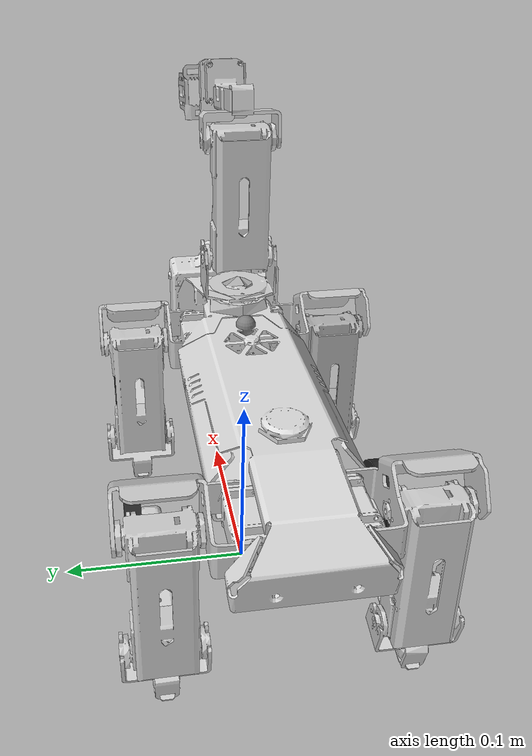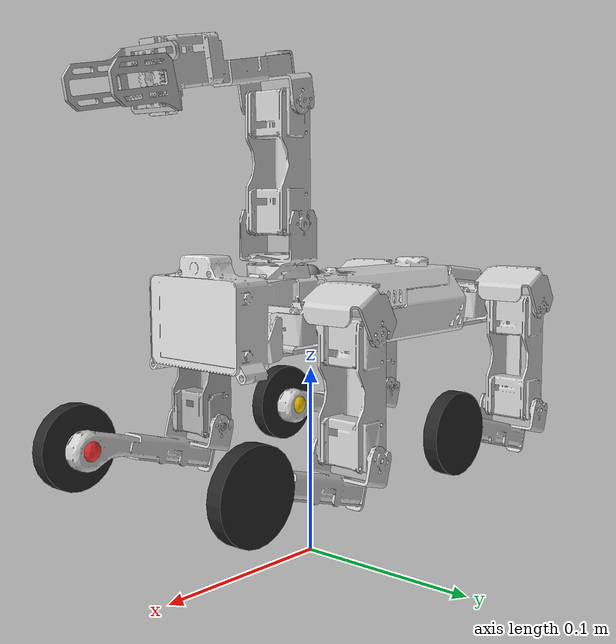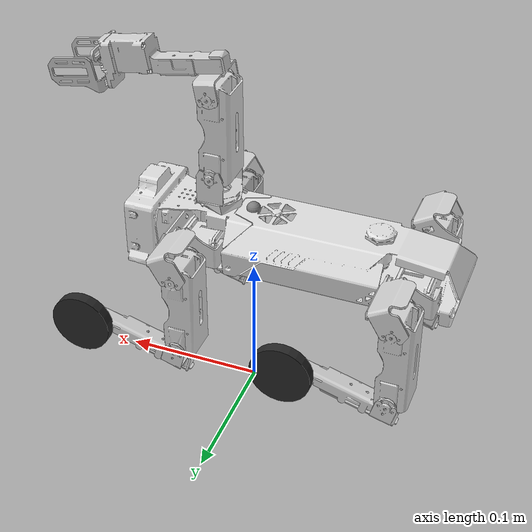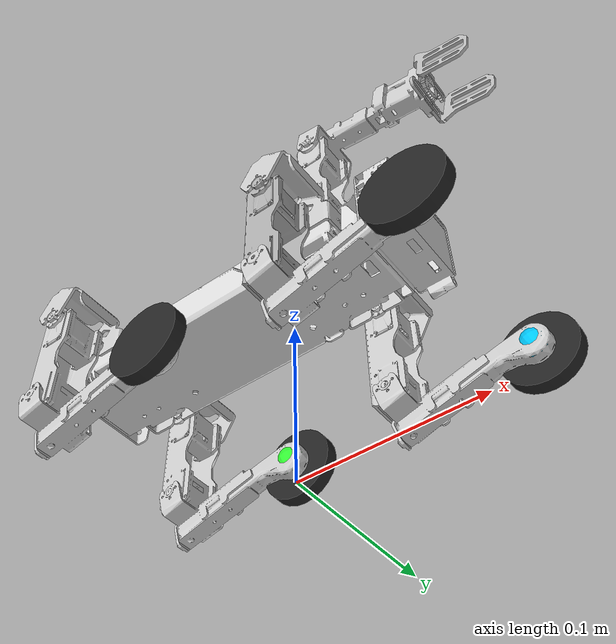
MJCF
<mujoco model="mini2sw">
  <compiler angle="radian" meshdir="../meshes/stl/" autolimits="true" />
  <option timestep="0.001"/>
  <asset>
    <mesh name="base" file="fillet_3_006.stl" content_type="model/stl" />
    <mesh name="fl_hip" file="convert_1_003.stl" content_type="model/stl" />
    <mesh name="fl_thigh" file="fillet_2_003.stl" content_type="model/stl" />
    <mesh name="fl_calf" file="cut_extrude_8_002.stl" content_type="model/stl" />
    <mesh name="fr_hip" file="left_shoulder_convert_1_002.stl" content_type="model/stl" />
    <mesh name="fr_thigh" file="thigh_bracket_2_2_001.stl" content_type="model/stl" />
    <mesh name="fr_calf" file="cut_extrude_8_001.stl" content_type="model/stl" />
    <mesh name="bl_hip" file="convert_1_003.stl" content_type="model/stl" />
    <mesh name="bl_thigh" file="fillet_2_004.stl" content_type="model/stl" />
    <mesh name="bl_calf" file="cut_extrude_8_003.stl" content_type="model/stl" />
    <mesh name="br_hip" file="left_shoulder_convert_1_002.stl" content_type="model/stl" />
    <mesh name="br_thigh" file="thigh_bracket_2_2_002.stl" content_type="model/stl" />
    <mesh name="br_calf" file="cut_extrude_8_004.stl" content_type="model/stl" />
    <mesh name="arm_base" file="cut_extrude_2_007.stl" content_type="model/stl" />
    <mesh name="arm_thigh" file="NONE.4641.stl" content_type="model/stl" />
    <mesh name="arm_calf" file="cut_extrude_12_001.stl" content_type="model/stl" />
    <mesh name="hand_right" file="fillet_9_010.stl" content_type="model/stl" />
    <mesh name="hand_left" file="fillet_9_009.stl" content_type="model/stl" />
  </asset>

  <default>
    <default class="robot">
      <joint frictionloss="0.0001" armature="0.0005"/>
      <position kp="0.0" dampratio="0.0"/>
      <default class="visual">
        <geom type="mesh" contype="0" conaffinity="0" group="2" density="0"/>
      </default>

      <default class="collision">
        <geom type="mesh" contype="1" conaffinity="0" group="3" density="0"/>
      </default>
    </default>
  </default>

  <default>
    <geom contype="1" conaffinity="2"/>
    <joint damping="0.05" frictionloss="0.0001" armature="0.0025"/>

    <default class="servo">
      <geom contype="1" conaffinity="0" condim="1" />
      <joint damping="0.04" frictionloss="0.001" armature="0.0025" />
      <position kp="1.15" kv="0.0" forcerange="-0.43 0.43" ctrlrange="-1.57 1.57" />
    </default>

  </default>

  <sensor>
    <framequat name="orientation" objtype="site" noise="0.001" objname="imu" />
    <gyro name="angular-velocity" site="imu" noise="0.005" />
    <gyro name="imu_ang_vel" site="imu" />
    <velocimeter name="imu_lin_vel" site="imu" />
    <accelerometer name="imu_accel" site="imu" />
    <subtreeangmom name="root_angmom" body="base" />
  </sensor>
  <worldbody>
    <body name="base" pos="0 0 0.15">
      <joint name="floating_base" type="free" />
      <body name="base_model" pos="0 0 0" quat="0 0 0 1" childclass="robot">
      <inertial pos="0.033729 0.000099 -0.015405" quat="0.000997045 0.70617 0.000815297 0.708041" mass="0.28377" diaginertia="0.00120569 0.00114744 0.000120802" />
      <geom class="visual" name="base_visual" pos="-0.03051 0 -0.03361" quat="1 0 0 0" type="mesh" density="0" rgba="0.88 0.88 0.88 1" mesh="base" />
        <geom class="collision" name="base_collision" pos="-0.03051 0 -0.03361" quat="1 0 0 0" type="mesh" density="0" rgba="0.88 0.88 0.88 0.5" mesh="base" />
      <body name="fl_hip" pos="-0.04946 -0.0225 -0.02207">
        <inertial pos="0.018438 -0.021283 0.007233" quat="0.46699 0.506042 -0.631949 0.355643" mass="0.0196" diaginertia="7.27945e-06 6.03396e-06 3.25658e-06" />
        <joint name="fl_hip_joint" class="servo" pos="0 0 0" axis="1 0 0" range="-0.6 0.6" actuatorfrcrange="-0.43 0.43" />
        <geom class="visual" name="fl_hip_visual" pos="0.01852 -0.01416 0" quat="0.707105 0.707108 0 0" type="mesh" density="0" rgba="0.82 0.82 0.82 1" mesh="fl_hip" />
        <geom class="collision" name="fl_hip_collision" pos="0.01852 -0.01416 0" quat="0.707105 0.707108 0 0" type="mesh" density="0" rgba="0.82 0.82 0.82 0.5" mesh="fl_hip" />
        <body name="fl_thigh" pos="0.01857 -0.04956 0">
          <inertial pos="0.001730 0.018616 -0.029475" quat="0.999953 1.91514e-05 -0.0014966 -0.00962833" mass="0.062343" diaginertia="4.67223e-05 4.15281e-05 9.97067e-06" />
          <joint name="fl_thigh_joint" class="servo" pos="0 0 0" axis="0 -1 0" range="-1.22 1.91" actuatorfrcrange="-0.43 0.43" />
          <geom class="visual" name="fl_thigh_visual" pos="0.01154 0.01895 -0.02995" quat="0.499998 0.5 -0.500002 -0.5" type="mesh" density="0" rgba="0.82 0.82 0.82 1" mesh="fl_thigh" />
        <geom class="collision" name="fl_thigh_collision" pos="0.01154 0.01895 -0.02995" quat="0.499998 0.5 -0.500002 -0.5" type="mesh" density="0" rgba="0.82 0.82 0.82 0.5" mesh="fl_thigh" />
          <body name="fl_calf" pos="0 0 -0.05991" quat="0.9902 0 0.1391 0">
            <inertial pos="-0.034719 0.018555 -0.013632" quat="0.999067 0 0.0431863 0" mass="0.02225" diaginertia="1.40844e-05 1.366e-05 1.40559e-06" />
            <joint name="fl_calf_joint" class="servo" pos="0 0 0" axis="0 -1 0" range="-1.134 1.047" actuatorfrcrange="-0.43 0.43" />
            <geom class="visual" name="fl_calf_visual" pos="-0.07149 0.01858 -0.02256" quat="0.707105 0.707108 0 0" type="mesh" density="0" rgba="0.82 0.82 0.82 1" mesh="fl_calf" />
            <geom class="collision" name="fl_calf_collision" pos="-0.07149 0.01858 -0.02256" quat="0.707105 0.707108 0 0" type="mesh" density="0" rgba="0.82 0.82 0.82 0.5" mesh="fl_calf" />
            <geom class="visual" name="fl_wheel_visual" pos="-0.072 0.010 -0.022" quat="0.707105 0.707105 0 0" type="cylinder" size="0.022 0.004" rgba="0.15 0.15 0.15 1" />
            <geom class="collision" name="fl_wheel_collision" pos="-0.072 0.010 -0.022" quat="0.707105 0.707105 0 0" type="cylinder" size="0.022 0.004" rgba="0.15 0.15 0.15 0.5" />
            <site name="fl" pos="-0.072 0.018 -0.022" type="sphere" size="0.008" rgba="0 0.8 1 1" group="2" />
          </body>
        </body>
      </body>
      <body name="fr_hip" pos="-0.04946 0.0225 -0.02207">
        <inertial pos="0.018547 0.021288 0.007239" quat="0.506042 0.46699 -0.355643 0.631949" mass="0.0196" diaginertia="7.27945e-06 6.03396e-06 3.25658e-06" />
        <joint name="fr_hip_joint" class="servo" pos="0 0 0" axis="-1 0 0" range="-0.6 0.6" actuatorfrcrange="-0.43 0.43" />
        <geom class="visual" name="fr_hip_visual" pos="0.01853 0.01416 0" quat="0.707105 0.707108 0 0" type="mesh" density="0" rgba="0.82 0.82 0.82 1" mesh="fr_hip" />
        <geom class="collision" name="fr_hip_collision" pos="0.01853 0.01416 0" quat="0.707105 0.707108 0 0" type="mesh" density="0" rgba="0.82 0.82 0.82 0.5" mesh="fr_hip" />
        <body name="fr_thigh" pos="0.01857 0.04876 0">
          <inertial pos="0.001806 -0.018484 -0.029623" quat="0.999953 -1.91514e-05 -0.0014966 0.00962833" mass="0.062343" diaginertia="4.67223e-05 4.15281e-05 9.97067e-06" />
          <joint name="fr_thigh_joint" class="servo" pos="0 0 0" axis="0 -1 0" range="-1.22 1.91" actuatorfrcrange="-0.43 0.43" />
          <geom class="visual" name="fr_thigh_visual" pos="0.01154 -0.01815 -0.02995" quat="0.499998 0.5 0.500002 0.5" type="mesh" density="0" rgba="0.7 0.7 0.7 1" mesh="fr_thigh" />
        <geom class="collision" name="fr_thigh_collision" pos="0.01154 -0.01815 -0.02995" quat="0.499998 0.5 0.500002 0.5" type="mesh" density="0" rgba="0.7 0.7 0.7 0.5" mesh="fr_thigh" />
          <body name="fr_calf" pos="1e-05 0.0008 -0.05991" quat="0.9902 0 0.1391 0">
            <inertial pos="-0.034808 -0.018555 -0.013827" quat="0.999067 0 0.0431863 0" mass="0.02225" diaginertia="1.40844e-05 1.366e-05 1.40559e-06" />
            <joint name="fr_calf_joint" class="servo" pos="0 0 0" axis="0 -1 0" range="-1.134 1.047" actuatorfrcrange="-0.43 0.43" />
            <geom class="visual" name="fr_calf_visual" pos="-0.07151 -0.01858 -0.02256" quat="0.707105 0.707108 0 0" type="mesh" density="0" rgba="0.82 0.82 0.82 1" mesh="fr_calf" />
        <geom class="collision" name="fr_calf_collision" pos="-0.07151 -0.01858 -0.02256" quat="0.707105 0.707108 0 0" type="mesh" density="0" rgba="0.82 0.82 0.82 0.5" mesh="fr_calf" />
            <geom class="visual" name="fr_wheel_visual" pos="-0.072 -0.010 -0.022" quat="0.707105 0.707105 0 0" type="cylinder" size="0.022 0.004" rgba="0.15 0.15 0.15 1" />
            <geom class="collision" name="fr_wheel_collision" pos="-0.072 -0.010 -0.022" quat="0.707105 0.707105 0 0" type="cylinder" size="0.022 0.004" rgba="0.15 0.15 0.15 0.5" />
            <site name="fr" pos="-0.072 -0.018 -0.022" type="sphere" size="0.008" rgba="1 0.2 0.2 1" group="2" />
          </body>
        </body>
      </body>

      <body name="br_hip" pos="0.10059 0.0225 -0.02207">
        <inertial pos="0.018547 0.021288 0.007239" quat="0.506042 0.46699 -0.355643 0.631949" mass="0.0196" diaginertia="7.27945e-06 6.03396e-06 3.25658e-06" />
        <joint name="br_hip_joint" class="servo" pos="0 0 0" axis="-1 0 0" range="-0.6 0.6" actuatorfrcrange="-0.43 0.43" />
        <geom class="visual" pos="0.01853 0.01416 0" quat="0.707105 0.707108 0 0" type="mesh" density="0" rgba="0.82 0.82 0.82 1" mesh="br_hip" name="br_hip_visual" />
        <geom class="collision" pos="0.01853 0.01416 0" quat="0.707105 0.707108 0 0" type="mesh" density="0" rgba="0.82 0.82 0.82 0.5" mesh="br_hip" name="br_hip_collision" />
        <body name="br_thigh" pos="0.01853 0.04876 0">
          <inertial pos="0.001733 -0.018484 -0.029570" quat="0.999953 -1.91514e-05 -0.0014966 0.00962833" mass="0.062343" diaginertia="4.67223e-05 4.15281e-05 9.97067e-06" />
          <joint name="br_thigh_joint" class="servo" pos="0 0 0" axis="0 -1 0" range="-1.22 1.91" actuatorfrcrange="-0.43 0.43" />
          <geom class="visual" name="br_thigh_visual" pos="0.01154 -0.01815 -0.02995" quat="0.499998 0.5 0.500002 0.5" type="mesh" density="0" rgba="0.82 0.82 0.82 1" mesh="br_thigh" />
        <geom class="collision" name="br_thigh_collision" pos="0.01154 -0.01815 -0.02995" quat="0.499998 0.5 0.500002 0.5" type="mesh" density="0" rgba="0.82 0.82 0.82 0.5" mesh="br_thigh" />
          <body name="br_calf" pos="0 0.0008 -0.0599" quat="0.9902 0 0.1391 0">
            <inertial pos="-0.034809 -0.018545 -0.014121" quat="0.999067 0 0.0431863 0" mass="0.02225" diaginertia="1.40844e-05 1.366e-05 1.40559e-06" />
            <joint name="br_calf_joint" class="servo" pos="0 0 0" axis="0 -1 0" range="-1.134 1.047" actuatorfrcrange="-0.43 0.43" />
            <geom class="visual" name="br_calf_visual" pos="-0.0715 -0.01857 -0.0232" quat="0.707105 0.707108 0 0" type="mesh" density="0" rgba="0.82 0.82 0.82 1" mesh="br_calf" />
            <geom class="collision" name="br_calf_collision" pos="-0.0715 -0.01857 -0.0232" quat="0.707105 0.707108 0 0" type="mesh" density="0" rgba="0.82 0.82 0.82 0.5" mesh="br_calf" />
            <geom class="visual" name="br_wheel_visual" pos="-0.072 -0.01 -0.022" quat="0.707105 0.707105 0 0" type="cylinder" size="0.022 0.004" rgba="0.15 0.15 0.15 1" />
            <geom class="collision" name="br_wheel_collision" pos="-0.072 -0.01 -0.022" quat="0.707105 0.707105 0 0" type="cylinder" size="0.022 0.004" rgba="0.15 0.15 0.15 0.5" />
            <site name="br" pos="-0.072 -0.018 -0.022" type="sphere" size="0.008" rgba="1 0.8 0 1" group="2" />
          </body>
        </body>
      </body>

      <body name="bl_hip" pos="0.10059 -0.0225 -0.02207">
        <inertial pos="0.018438 -0.021283 0.007233" quat="0.46699 0.506042 -0.631949 0.355643" mass="0.0196" diaginertia="7.27945e-06 6.03396e-06 3.25658e-06" />
        <joint name="bl_hip_joint" class="servo" pos="0 0 0" axis="1 0 0" range="-0.6 0.6" actuatorfrcrange="-0.43 0.43" />
        <geom class="visual" name="bl_hip_visual" pos="0.01852 -0.01416 0" quat="0.707105 0.707108 0 0" type="mesh" density="0" rgba="0.82 0.82 0.82 1" mesh="bl_hip" />
        <geom class="collision" name="bl_hip_collision" pos="0.01852 -0.01416 0" quat="0.707105 0.707108 0 0" type="mesh" density="0" rgba="0.82 0.82 0.82 0.5" mesh="bl_hip" />
        <body name="bl_thigh" pos="0.01853 -0.04956 2e-05">
          <inertial pos="0.001730 0.018600 -0.029682" quat="0.999953 1.91514e-05 -0.0014966 -0.00962833" mass="0.062343" diaginertia="4.67223e-05 4.15281e-05 9.97067e-06" />
          <joint name="bl_thigh_joint" class="servo" pos="0 0 0" axis="0 -1 0" range="-1.22 1.91" actuatorfrcrange="-0.43 0.43" />
          <geom class="visual" name="bl_thigh_visual" pos="0.01154 0.01895 -0.02997" quat="0.499998 0.5 -0.500002 -0.5" type="mesh" density="0" rgba="0.82 0.82 0.82 1" mesh="bl_thigh" />
        <geom class="collision" name="bl_thigh_collision" pos="0.01154 0.01895 -0.02997" quat="0.499998 0.5 -0.500002 -0.5" type="mesh" density="0" rgba="0.82 0.82 0.82 0.5" mesh="bl_thigh" />
          <body name="bl_calf" pos="0 0 -0.05994" quat="0.9902 0 0.1391 0">
            <inertial pos="-0.034729 0.018555 -0.013665" quat="0.999067 0 0.0431863 0" mass="0.02225" diaginertia="1.40844e-05 1.366e-05 1.40559e-06" />
            <joint name="bl_calf_joint" class="servo" pos="0 0 0" axis="0 -1 0" range="-1.134 1.047" actuatorfrcrange="-0.43 0.43" />
            <geom class="visual" name="bl_calf_visual" pos="-0.0715 0.01858 -0.02255" quat="0.707105 0.707108 0 0" type="mesh" density="0" rgba="0.82 0.82 0.82 1" mesh="bl_calf" />
        <geom class="collision" name="bl_calf_collision" pos="-0.0715 0.01858 -0.02255" quat="0.707105 0.707108 0 0" type="mesh" density="0" rgba="0.82 0.82 0.82 0.5" mesh="bl_calf" />
            <geom class="visual" name="bl_wheel_visual" pos="-0.072 0.01 -0.022" quat="0.707105 0.707105 0 0" type="cylinder" size="0.022 0.004" rgba="0.15 0.15 0.15 1" />
            <geom class="collision" name="bl_wheel_collision" pos="-0.072 0.01 -0.022" quat="0.707105 0.707105 0 0" type="cylinder" size="0.022 0.004" rgba="0.15 0.15 0.15 0.5" />
            <site name="bl" pos="-0.072 0.018 -0.022" type="sphere" size="0.008" rgba="0.2 1 0.2 1" group="2" />
          </body>
        </body>
      </body>

      <body name="arm_base" pos="-0.02471 0 0.01166">
        <inertial pos="0.000450 -0.000049 0.005394" mass="0.01" diaginertia="1e-05 1e-05 1e-05" />
        <joint name="arm_yaw_joint" class="servo" pos="0 0 0" axis="0 0 1" range="-3.14 3.14" actuatorfrcrange="-0.43 0.43" />
        <geom class="visual" name="arm_base_visual" pos="0 0 -0.00631" quat="0.707105 0.707108 0 0" type="mesh" density="0" rgba="0.82 0.82 0.82 1" mesh="arm_base" />
        <geom class="collision" name="arm_base_collision" pos="0 0 -0.00631" quat="0.707105 0.707108 0 0" type="mesh" density="0" rgba="0.82 0.82 0.82 0.5" mesh="arm_base" />
        <body name="arm_thigh" pos="0 0.01853 0.01538">
          <inertial pos="0.001748 -0.018489 0.029584" quat="0.00679484 0.708124 0.00682168 0.706022" mass="0.018812" diaginertia="4.67223e-05 4.15281e-05 9.70967e-06" />
          <joint name="arm_thigh_joint" class="servo" pos="0 0 0" axis="0 -1 0" range="-1.632 1.3" actuatorfrcrange="-0.43 0.43" />
          <geom class="visual" name="arm_thigh_visual" pos="0.09773 -0.01624 -0.3029" type="mesh" density="0" rgba="0.82 0.82 0.82 1" mesh="arm_thigh" />
        <geom class="collision" name="arm_thigh_collision" pos="0.09773 -0.01624 -0.3029" type="mesh" density="0" rgba="0.82 0.82 0.82 0.5" mesh="arm_thigh" />
          <body name="arm_calf" pos="0 0 0.0599" quat="0.9961 0 -0.0871 0">
            <inertial pos="-0.033952 -0.018355 0.014479" quat="0.547177 0.45237 0.472372 0.522325" mass="0.017297" diaginertia="2.72208e-05 2.68727e-05 3.22652e-06" />
            <joint name="arm_calf_joint" class="servo" pos="0 0 0" axis="0 -1 0" range="-0.95 1.57" actuatorfrcrange="-0.43 0.43" />
            <geom class="visual" name="arm_calf_visual" pos="0.0085 -0.01827 0.01267" quat="0.707105 0.707108 0 0" type="mesh" density="0" rgba="0.82 0.82 0.82 1" mesh="arm_calf" />
        <geom class="collision" name="arm_calf_collision" pos="0.0085 -0.01827 0.01267" quat="0.707105 0.707108 0 0" type="mesh" density="0" rgba="0.82 0.82 0.82 0.5" mesh="arm_calf" />
            <body name="hand_right" pos="-0.0957 -0.00124 0.01837">
              <inertial pos="0.002227 -0.017500 0.002325" quat="0.114649 0.766696 -0.304081 0.553685" mass="0.0010815" diaginertia="2.71365e-07 2.50921e-07 9.26541e-08" />
              <geom class="visual" name="hand_right_visual" pos="0.0208 0.0149 0.002" quat="0.499998 -0.5 0.500002 -0.5" type="mesh" density="0" rgba="0.75 0.75 0.75 1" mesh="hand_right" />
        <geom class="collision" name="hand_right_collision" pos="0.0208 0.0149 0.002" quat="0.499998 -0.5 0.500002 -0.5" type="mesh" density="0" rgba="0.75 0.75 0.75 0.5" mesh="hand_right" />
            </body>
            <body name="hand_left" pos="-0.0957 -0.03531 0.01837">
              <inertial pos="0.002475 0.017349 -0.002371" quat="-0.304081 0.553685 0.114649 0.766696" mass="0.0010815" diaginertia="2.71365e-07 2.50921e-07 9.26541e-08" />
              <geom class="visual" name="hand_left_visual" pos="0.0208 -0.0149 -0.002" quat="0.499998 0.5 0.500002 0.5" type="mesh" density="0" rgba="0.75 0.75 0.75 1" mesh="hand_left" />
        <geom class="collision" name="hand_left_collision" pos="0.0208 -0.0149 -0.002" quat="0.499998 0.5 0.500002 0.5" type="mesh" density="0" rgba="0.75 0.75 0.75 0.5" mesh="hand_left" />
            </body>
          </body>
        </body>
      </body>
      <site name="imu" pos="0 0 0" quat="1 0 0 0" />
    </body></body>
  </worldbody>
  <actuator>
    <position class="servo" name="fl_hip_joint" joint="fl_hip_joint" />
    <position class="servo" name="fl_thigh_joint" joint="fl_thigh_joint" />
    <position class="servo" name="fl_calf_joint" joint="fl_calf_joint" />

    <position class="servo" name="fr_hip_joint" joint="fr_hip_joint" />
    <position class="servo" name="fr_thigh_joint" joint="fr_thigh_joint" />
    <position class="servo" name="fr_calf_joint" joint="fr_calf_joint" />

    <position class="servo" name="br_hip_joint" joint="br_hip_joint" />
    <position class="servo" name="br_thigh_joint" joint="br_thigh_joint" />
    <position class="servo" name="br_calf_joint" joint="br_calf_joint" />

    <position class="servo" name="bl_hip_joint" joint="bl_hip_joint" />
    <position class="servo" name="bl_thigh_joint" joint="bl_thigh_joint" />
    <position class="servo" name="bl_calf_joint" joint="bl_calf_joint" />

    <position class="servo" name="arm_yaw_joint" joint="arm_yaw_joint" ctrlrange="-3.14 3.14" />
    <position class="servo" name="arm_thigh_joint" joint="arm_thigh_joint" ctrlrange="-1.632 1.3" />
    <position class="servo" name="arm_calf_joint" joint="arm_calf_joint" ctrlrange="-0.95 1.57" />
  </actuator>
</mujoco>
